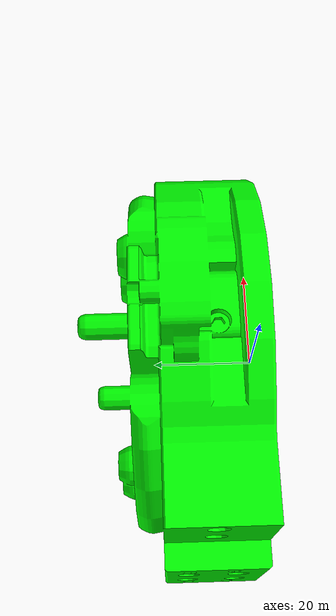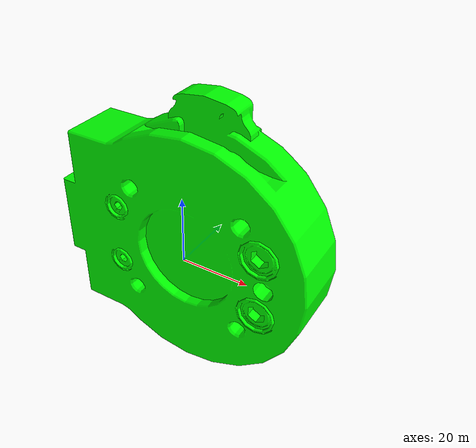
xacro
<?xml version="1.0"?>
<robot xmlns:xacro="http://www.ros.org/wiki/xacro" name="tool_side">

  <!-- Define properties -->
  <xacro:property name="mesh_scale" value="0.001 0.001 0.001" /> <!-- Adjust if mm->m conversion needed -->

  <material name="green">
       <color rgba="0 1 0 1"/>
  </material>

  <!-- BASE LINK (connects to robot flange) -->
  <link name="tool_side_link">
    <visual>
      <geometry>
        <mesh filename="package://nakit_visualisation/meshes/tool_side.dae"/>
      </geometry>
      <material name="green"/>
    </visual>
  </link>

</robot>
